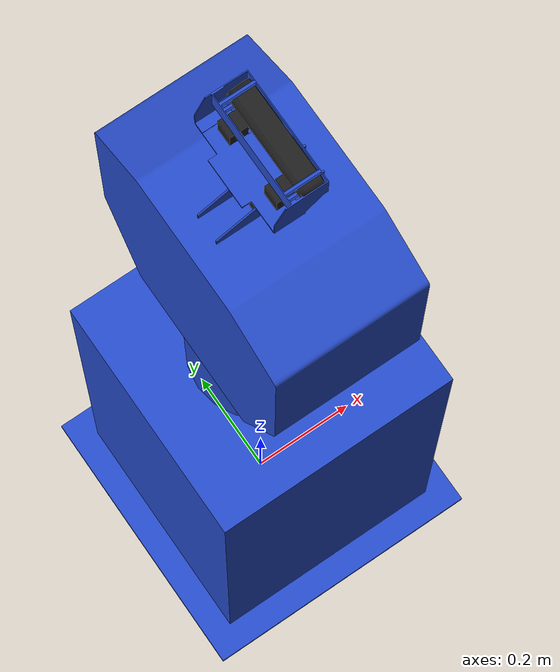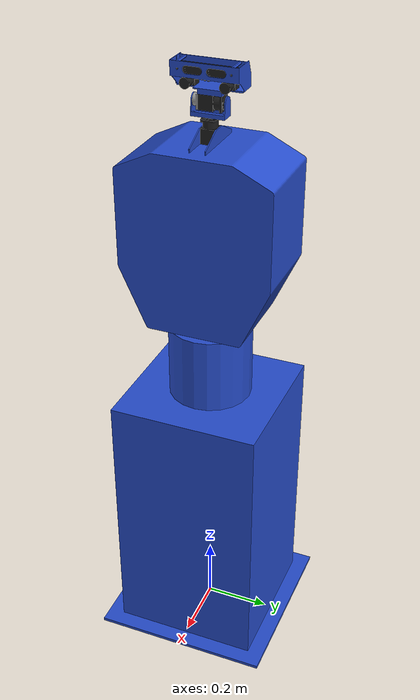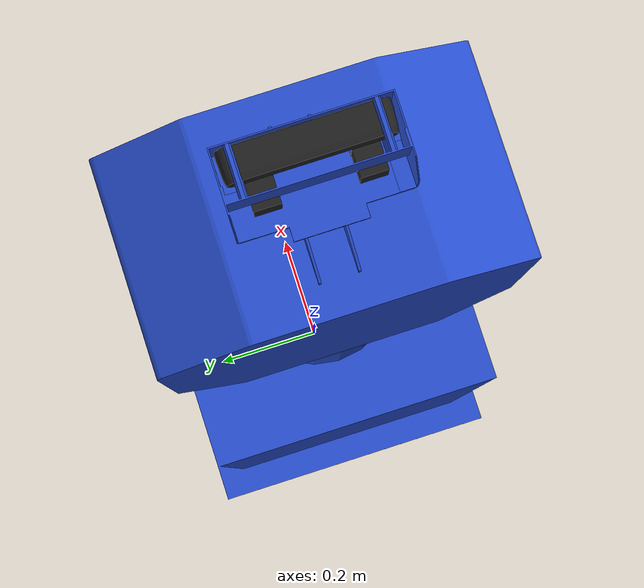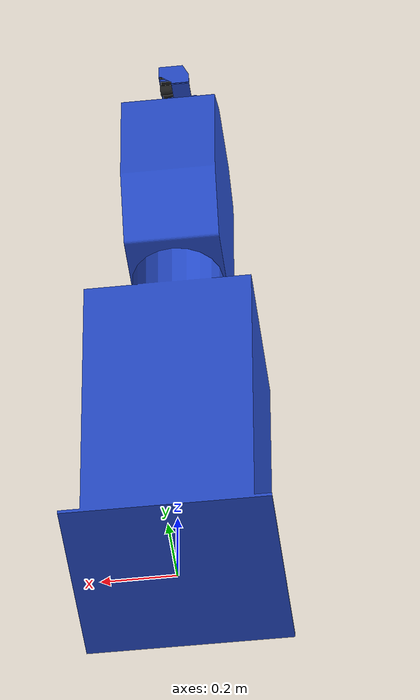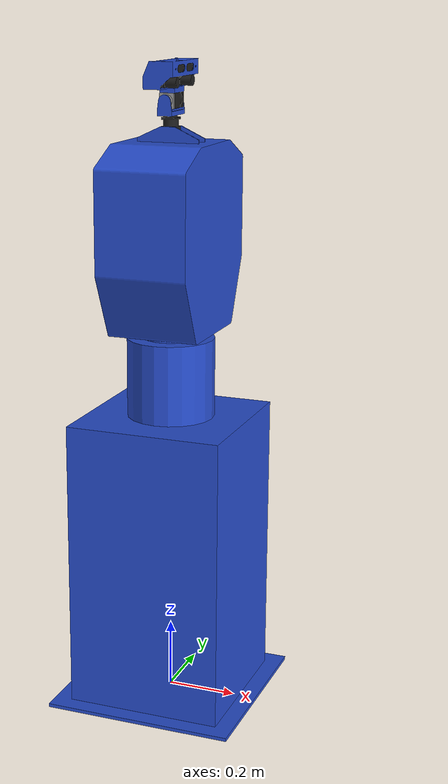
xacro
<?xml version="1.0"?>

<robot name="crom2_robot" xmlns:xacro="http://ros.org/wiki/xacro">

   <!-- Define a offsets using properties -->
   <property name="torso_offset_x" value="0.0" />
   <property name="torso_offset_y" value="0.0" />
   <property name="torso_offset_z" value="0.0" />
   <property name="trunk_offset_x" value="0.0" />
   <property name="trunk_offset_y" value="0.0" />
   <property name="trunk_offset_z" value="1.078" />
   <property name="head_offset_x" value="0.0" />
   <property name="head_offset_y" value="0.0" />
   <property name="head_offset_z" value="0.545" />

   <!-- Include all component files -->
   <xacro:include filename="$(find crom2_description)/urdf/materials.urdf.xacro" />
   <xacro:include filename="$(find crom2_description)/urdf/crom2_base.urdf.xacro" />
   <xacro:include filename="$(find crom2_description)/urdf/crom2_trunk.urdf.xacro" />
   <xacro:include filename="$(find crom2_description)/urdf/crom2_head.urdf.xacro" />
   <!--xacro:include filename="$(find crom2_description)/urdf/crom2_head.urdf.xacro" /-->

  <link name="base_footprint">
  </link>

   <!-- Add the base -->
   <base name="base" color="Blue" parent="base_footprint"/>

   <!-- Attach the trunk -->
   <trunk name="waist" parent="base" color="Blue">
      <origin xyz="${trunk_offset_x} ${trunk_offset_y} ${trunk_offset_z}" rpy="0 0 0" />
   </trunk>

   <!-- Attach the head -->
   <head name="head" parent="waist" color="Blue">
      <origin xyz="${head_offset_x} ${head_offset_y} ${head_offset_z}" rpy="0 0 0" />
   </head>

</robot>

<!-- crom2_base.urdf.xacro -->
<robot name="base" xmlns:xacro="http://ros.org/wiki/xacro">

  <!-- Define a number of dimensions using properties -->
  <property name="base_size_x" value="0.55" />
  <property name="base_size_y" value="0.55" />
  <property name="base_size_z" value="1.078" />
  <property name="mesh_scale" value="1" />

  <property name="PI" value="3.1415" />

  <!-- The base xacro macro -->
  <macro name="base" params="name parent color">
    <link name="${name}_link">
      <visual>
        <origin xyz="0 0 0" rpy="0 0 0" />
        <geometry>
          <mesh filename = "package://crom2_description/meshes/CROM2_base.STL" scale="${mesh_scale} ${mesh_scale} ${mesh_scale}" />
        </geometry>
        <material name="${color}" />
      </visual>
      <collision>
        <origin xyz="0 0 0" rpy="0 0 0" />
        <geometry>
          <box size="${base_size_x} ${base_size_y} ${base_size_z}" />
        </geometry>
      </collision>
    </link>
    <joint name="${name}_joint" type="fixed">
		<origin xyz="0 0 0" rpy="0 0 0" />
		<parent link="${parent}"/>
		<child link="${name}_link" />
	</joint>
  </macro>

 </robot>

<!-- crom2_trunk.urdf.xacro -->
<robot name="trunk" xmlns:xacro="http://ros.org/wiki/xacro">

  <!-- Define a number of dimensions using properties -->
  <property name="trunk_size_x" value="0.45" />
  <property name="trunk_size_y" value="0.284" />
  <property name="trunk_size_z" value="0.545" />
  <property name="mesh_scale" value="1" />

  <!-- Define the torso -->
  <macro name="trunk" params="parent name color *origin">
    <joint name="${name}_joint" type="revolute">
		<xacro:insert_block name="origin" />
		<parent link="${parent}_link" />
		<child link="${name}_link" />
		<axis xyz="0 0 1" />
		<limit effort="1.5" velocity="6.178465545" lower="-1.58" upper="1.58" />
	</joint>

	<link name="${name}_link">
      <visual>
        <origin xyz="0 0 0" rpy="0 0 0" />
        <geometry>
          <!--box size="${torso_size_x} ${torso_size_y} ${torso_size_z}" /-->
          <mesh filename = "package://crom2_description/meshes/CROM2_trunk.STL" scale="${mesh_scale} ${mesh_scale} ${mesh_scale}" />
        </geometry>
        <material name="${color}" />
      </visual>
      <collision>
        <origin xyz="0 0 0" rpy="0 0 0" />
        <geometry>
          <box size="${trunk_size_x} ${trunk_size_y} ${trunk_size_z}" />
        </geometry>
      </collision>
    </link>
  </macro>

</robot>

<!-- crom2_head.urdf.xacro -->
<robot name="head" xmlns:xacro="http://ros.org/wiki/xacro">

  <!-- Define a number of dimensions using properties -->
  <property name="head_pan_offset_x" value="0.45" />
  <property name="head_pan_offset_y" value="0.45" />
  <property name="head_size_y" value="0.284" />
  <property name="head_size_z" value="0.545" />
  <property name="mesh_scale" value="1" />

  <!-- Define the head -->

  <macro name="head" params="parent name color *origin">
	<joint name="${name}_frame_joint" type="fixed">
      <xacro:insert_block name="origin" />
      <parent link="${parent}_link"/>
      <child link="${name}_frame_link"/>
    </joint>
    <link name="${name}_frame_link">
      <visual>
        <origin xyz="0 0 0" rpy="0 0 0" />
        <geometry>
          <mesh filename = "package://crom2_description/meshes/CROM2_pantilt_1.STL"/>
        </geometry>
        <material name="Blue" />
      </visual>
      <collision>
        <origin xyz="0 0 0" rpy="0 0 0" />
        <geometry>
          <mesh filename = "package://crom2_description/meshes/CROM2_pantilt_1.STL" />
        </geometry>
      </collision>
    </link>

    <joint name="${name}_pan_motor_joint" type="fixed">
      <origin xyz="0 0 0" rpy="0 0 0" />
      <parent link="${name}_frame_link"/>
      <child link="${name}_pan_motor_link"/>
    </joint>
    <link name="${name}_pan_motor_link">
      <visual>
        <origin xyz="0 0 0" rpy="0 0 0" />
        <geometry>
          <mesh filename = "package://crom2_description/meshes/dynamixel_L42.STL" />
        </geometry>
        <material name="Black" />
      </visual>
      <collision>
        <origin xyz="0 0 0" rpy="0 0 0" />
        <geometry>
          <mesh filename = "package://crom2_description/meshes/dynamixel_L42.STL" />
        </geometry>
      </collision>
    </link>

    <joint name="${name}_pan_joint" type="revolute">
      <origin xyz="0 0 0.111" rpy="0 0 0" />
      <parent link="${name}_pan_motor_link"/>
      <child link="${name}_pan_link"/>
      <axis xyz="0 0 1" />
	  <limit effort="1.5" velocity="6.178465545" lower="-1.58" upper="1.58" />
    </joint>
    <link name="${name}_pan_link">
      <visual>
        <origin xyz="0 0 0" rpy="0 0 0" />
        <geometry>
          <mesh filename = "package://crom2_description/meshes/CROM2_pantilt_2.STL" />
        </geometry>
        <material name="Blue" />
      </visual>
      <collision>
        <origin xyz="0 0 0" rpy="0 0 0" />
        <geometry>
          <mesh filename = "package://crom2_description/meshes/CROM2_pantilt_2.STL" />
        </geometry>
      </collision>
    </link>

    <joint name="${name}_tilt_joint" type="revolute">
      <origin xyz="0 0 0" rpy="-1.57079 0 0" />
      <parent link="${name}_pan_link"/>
      <child link="${name}_tilt_link"/>
      <axis xyz="0 0 1" />
	  <limit effort="1.5" velocity="6.178465545" lower="-1.57079" upper="1.57079" />
    </joint>
    <link name="${name}_tilt_link">
		<visual>
        <origin xyz="0 0 -0.027" rpy="0 0 0" />
        <geometry>
          <mesh filename = "package://crom2_description/meshes/dynamixel_L42.STL" />
        </geometry>
        <material name="Black" />
      </visual>
      <collision>
        <origin xyz="0 0 -0.027" rpy="0 0 0" />
        <geometry>
          <mesh filename = "package://crom2_description/meshes/dynamixel_L42.STL" />
        </geometry>
      </collision>
    </link>

    <joint name="${name}_tilt_motor_2_joint" type="fixed">
      <origin xyz="0 0 0" rpy="0 0 0" />
      <parent link="${name}_pan_link"/>
      <child link="${name}_tilt_aux_link"/>
    </joint>
    <link name="${name}_tilt_aux_link">
      <visual>
        <origin xyz="0 -0.027 0" rpy="0 0 0" />
        <geometry>
          <mesh filename = "package://crom2_description/meshes/CROM2_pantilt_3.STL" />
        </geometry>
        <material name="Grey" />
      </visual>
      <collision>
        <origin xyz="0 -0.027 0" rpy="0 0 0" />
        <geometry>
          <mesh filename = "package://crom2_description/meshes/CROM2_pantilt_3.STL" />
        </geometry>
      </collision>
    </link>

    <joint name="${name}_camera_frame_joint" type="fixed">
      <origin xyz="0 -0.021 0" rpy="1.57079  0 0" />
      <parent link="${name}_tilt_link"/>
      <child link="${name}_camera_frame_link"/>
    </joint>
    <link name="${name}_camera_frame_link">
      <visual>
        <origin xyz="0 0 0" rpy="0 0 0" />
        <geometry>
          <mesh filename = "package://crom2_description/meshes/CROM2_pantilt_4.STL" />
        </geometry>
        <material name="Blue" />
      </visual>
      <collision>
        <origin xyz="0 0 0" rpy="0 0 0" />
        <geometry>
          <mesh filename = "package://crom2_description/meshes/CROM2_pantilt_4.STL" />
        </geometry>
      </collision>
    </link>

    <joint name="${name}_f10_camera_right_joint" type="fixed">
      <origin xyz="0.0075 -0.055 0.015" rpy="0 0 0" />
      <parent link="${name}_camera_frame_link"/>
      <child link="${name}_f10_camera_right_link"/>
    </joint>
    <link name="${name}_f10_camera_right_link">
      <visual>
        <origin xyz="0 0 0" rpy="0 0 0" />
        <geometry>
          <mesh filename = "package://crom2_description/meshes/FL2-010-R0-camera.STL" />
        </geometry>
        <material name="Black" />
      </visual>
      <collision>
        <origin xyz="0 0 0" rpy="0 0 0" />
        <geometry>
          <mesh filename = "package://crom2_description/meshes/FL2-010-R0-camera.STL" />
        </geometry>
      </collision>
    </link>

      <joint name="${name}_f10_camera_left_joint" type="fixed">
      <origin xyz="0.0075 0.055 0.015" rpy="0 0 0" />
      <parent link="${name}_camera_frame_link"/>
      <child link="${name}_f10_camera_left_link"/>
    </joint>
    <link name="${name}_f10_camera_left_link">
      <visual>
        <origin xyz="0 0 0" rpy="0 0 0" />
        <geometry>
          <mesh filename = "package://crom2_description/meshes/FL2-010-R0-camera.STL" />
        </geometry>
        <material name="Black" />
      </visual>
      <collision>
        <origin xyz="0 0 0" rpy="0 0 0" />
        <geometry>
          <mesh filename = "package://crom2_description/meshes/FL2-010-R0-camera.STL" />
        </geometry>
      </collision>
    </link>

    <joint name="${name}_xtion_camera_joint" type="fixed">
      <origin xyz="0.041 0 0.065" rpy="0 0 0" />
      <parent link="${name}_camera_frame_link"/>
      <child link="${name}_xtion_camera_link"/>
    </joint>
    <link name="${name}_xtion_camera_link">
      <visual>
        <origin xyz="0 0 0" rpy="0 0 0" />
        <geometry>
          <mesh filename = "package://crom2_description/meshes/xtion_camera.STL" />
        </geometry>
        <material name="Black" />
      </visual>
      <collision>
        <origin xyz="0 0 0" rpy="0 0 0" />
        <geometry>
          <mesh filename = "package://crom2_description/meshes/xtion_camera.STL" />
        </geometry>
      </collision>
    </link>

  </macro>

</robot>
